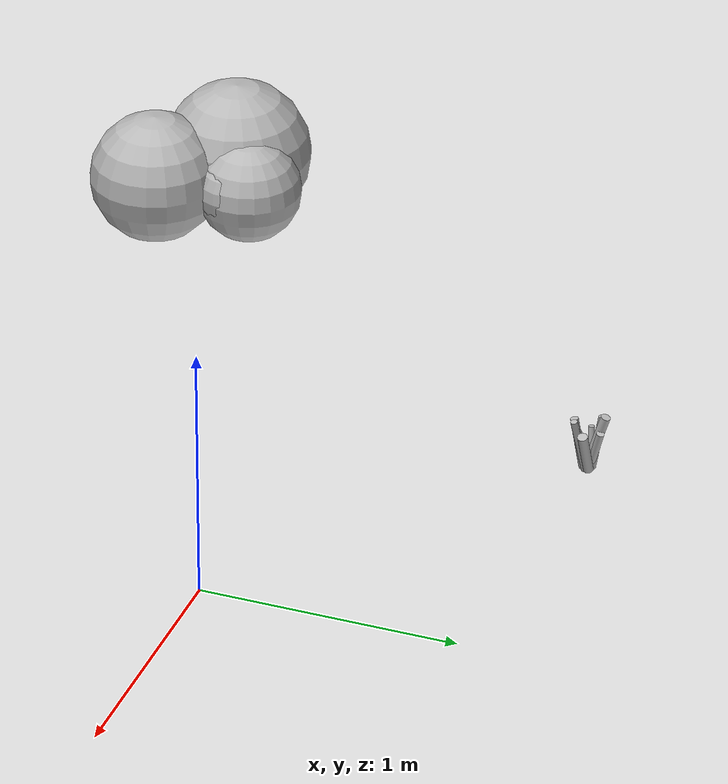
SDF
<sdf version="1.6">
 <world name="default">
  <model name="rock_39">
   <static>true</static>
   <link name="stone0">
    <pose>-2.7031 -1.2535 0.0216 0 0 2.582</pose>
    <visual name="stone0_v">
     <geometry><sphere><radius>0.1767</radius></sphere></geometry>
     <material>
      <script>
       <uri>model://bushfire/materials/scripts</uri>
       <uri>model://bushfire/materials/textures</uri>
       <name>Bushfire/Rock</name>
      </script>
     </material>
    </visual>
   </link>
   <link name="stone1">
    <pose>-2.7648 -0.9403 0.0398 0 0 0.697</pose>
    <visual name="stone1_v">
     <geometry><sphere><radius>0.1609</radius></sphere></geometry>
     <material>
      <script>
       <uri>model://bushfire/materials/scripts</uri>
       <uri>model://bushfire/materials/textures</uri>
       <name>Bushfire/Rock</name>
      </script>
     </material>
    </visual>
   </link>
   <link name="stone2">
    <pose>-2.8160 -0.8994 0.0257 0 0 2.993</pose>
    <visual name="stone2_v">
     <geometry><sphere><radius>0.2199</radius></sphere></geometry>
     <material>
      <script>
       <uri>model://bushfire/materials/scripts</uri>
       <uri>model://bushfire/materials/textures</uri>
       <name>Bushfire/Rock</name>
      </script>
     </material>
    </visual>
   </link>
   <link name="stone3">
    <pose>-3.0092 -1.0264 0.0774 0 0 2.362</pose>
    <visual name="stone3_v">
     <geometry><sphere><radius>0.3107</radius></sphere></geometry>
     <material>
      <script>
       <uri>model://bushfire/materials/scripts</uri>
       <uri>model://bushfire/materials/textures</uri>
       <name>Bushfire/Rock</name>
      </script>
     </material>
    </visual>
   </link>
   <link name="stone4">
    <pose>-2.7431 -1.2854 0.0517 0 0 2.756</pose>
    <visual name="stone4_v">
     <geometry><sphere><radius>0.2748</radius></sphere></geometry>
     <material>
      <script>
       <uri>model://bushfire/materials/scripts</uri>
       <uri>model://bushfire/materials/textures</uri>
       <name>Bushfire/Rock</name>
      </script>
     </material>
    </visual>
   </link>
  </model>
  <model name="tussocks">
   <static>true</static>
   <link name="tuft57_1">
    <pose>-1.3223 1.0969 0.1063 0 0.1561 1.7350</pose>
    <visual name="tuft57_1_v">
     <geometry><cylinder><radius>0.0153</radius><length>0.2311</length></cylinder></geometry>
     <material>
      <script>
       <uri>model://bushfire/materials/scripts</uri>
       <uri>model://bushfire/materials/textures</uri>
       <name>Bushfire/Tussock</name>
      </script>
     </material>
    </visual>
   </link>
   <link name="tuft57_2">
    <pose>-1.2915 1.0552 0.0953 0 0.3887 5.6184</pose>
    <visual name="tuft57_2_v">
     <geometry><cylinder><radius>0.0143</radius><length>0.2071</length></cylinder></geometry>
     <material>
      <script>
       <uri>model://bushfire/materials/scripts</uri>
       <uri>model://bushfire/materials/textures</uri>
       <name>Bushfire/Tussock</name>
      </script>
     </material>
    </visual>
   </link>
   <link name="tuft57_3">
    <pose>-1.3043 1.0966 0.0830 0 0.3220 0.9368</pose>
    <visual name="tuft57_3_v">
     <geometry><cylinder><radius>0.0151</radius><length>0.1805</length></cylinder></geometry>
     <material>
      <script>
       <uri>model://bushfire/materials/scripts</uri>
       <uri>model://bushfire/materials/textures</uri>
       <name>Bushfire/Tussock</name>
      </script>
     </material>
    </visual>
   </link>
   <link name="tuft57_4">
    <pose>-1.2556 1.0724 0.0902 0 0.3647 6.2148</pose>
    <visual name="tuft57_4_v">
     <geometry><cylinder><radius>0.0197</radius><length>0.1960</length></cylinder></geometry>
     <material>
      <script>
       <uri>model://bushfire/materials/scripts</uri>
       <uri>model://bushfire/materials/textures</uri>
       <name>Bushfire/Foliage2</name>
      </script>
     </material>
    </visual>
   </link>
   <link name="tuft57_5">
    <pose>-1.3039 1.0293 0.1000 0 0.1723 5.0193</pose>
    <visual name="tuft57_5_v">
     <geometry><cylinder><radius>0.0159</radius><length>0.2174</length></cylinder></geometry>
     <material>
      <script>
       <uri>model://bushfire/materials/scripts</uri>
       <uri>model://bushfire/materials/textures</uri>
       <name>Bushfire/Tussock</name>
      </script>
     </material>
    </visual>
   </link>
   <link name="tuft57_6">
    <pose>-1.3359 1.0697 0.0760 0 0.1353 3.5327</pose>
    <visual name="tuft57_6_v">
     <geometry><cylinder><radius>0.0121</radius><length>0.1653</length></cylinder></geometry>
     <material>
      <script>
       <uri>model://bushfire/materials/scripts</uri>
       <uri>model://bushfire/materials/textures</uri>
       <name>Bushfire/Foliage2</name>
      </script>
     </material>
    </visual>
   </link>
   <link name="tuft57_7">
    <pose>-1.3159 1.0955 0.1136 0 0.3049 1.4122</pose>
    <visual name="tuft57_7_v">
     <geometry><cylinder><radius>0.0187</radius><length>0.2471</length></cylinder></geometry>
     <material>
      <script>
       <uri>model://bushfire/materials/scripts</uri>
       <uri>model://bushfire/materials/textures</uri>
       <name>Bushfire/Foliage2</name>
      </script>
     </material>
    </visual>
   </link>
   <link name="tuft57_9">
    <pose>-1.2668 1.0440 0.1114 0 0.2494 5.7218</pose>
    <visual name="tuft57_9_v">
     <geometry><cylinder><radius>0.0137</radius><length>0.2421</length></cylinder></geometry>
     <material>
      <script>
       <uri>model://bushfire/materials/scripts</uri>
       <uri>model://bushfire/materials/textures</uri>
       <name>Bushfire/Tussock</name>
      </script>
     </material>
    </visual>
   </link>
  </model>
 </world>
</sdf>
